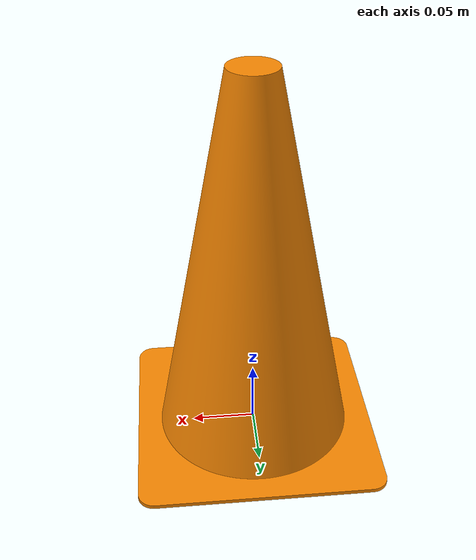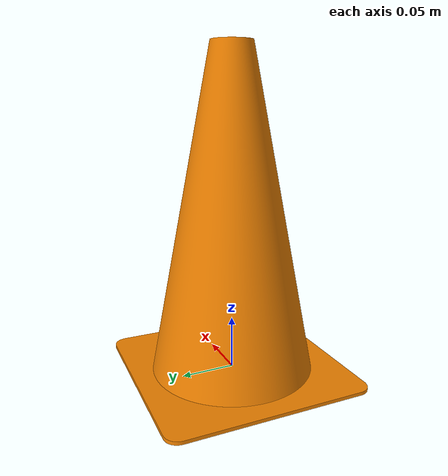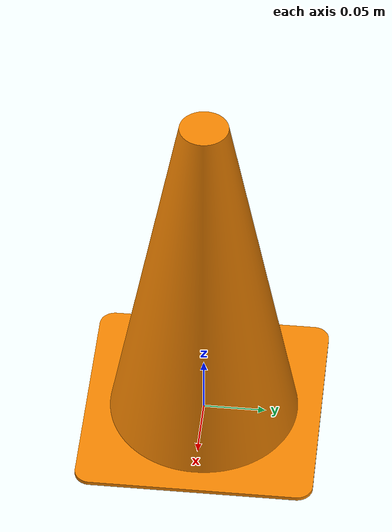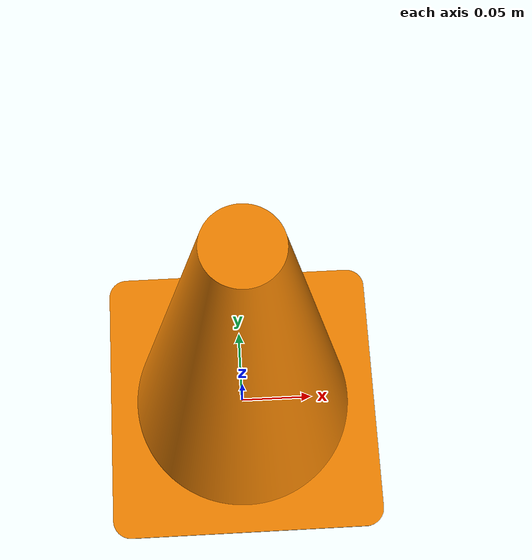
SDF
<?xml version="1.0" ?>
<sdf version="1.5">
  <model name="TrafficCone">

    <link name="link">
      <pose>0.0 0.0 0.0 0 0 0</pose>
      <collision name="collision">
        <geometry>
          <mesh><uri>model://TrafficCone/meshes/TrafficCone.dae</uri></mesh>
        </geometry>
      </collision>
      <visual name="visual">
        <geometry>
          <mesh><uri>model://TrafficCone/meshes/TrafficCone.dae</uri></mesh>
        </geometry>
      </visual>
    </link>

  </model>
</sdf>
